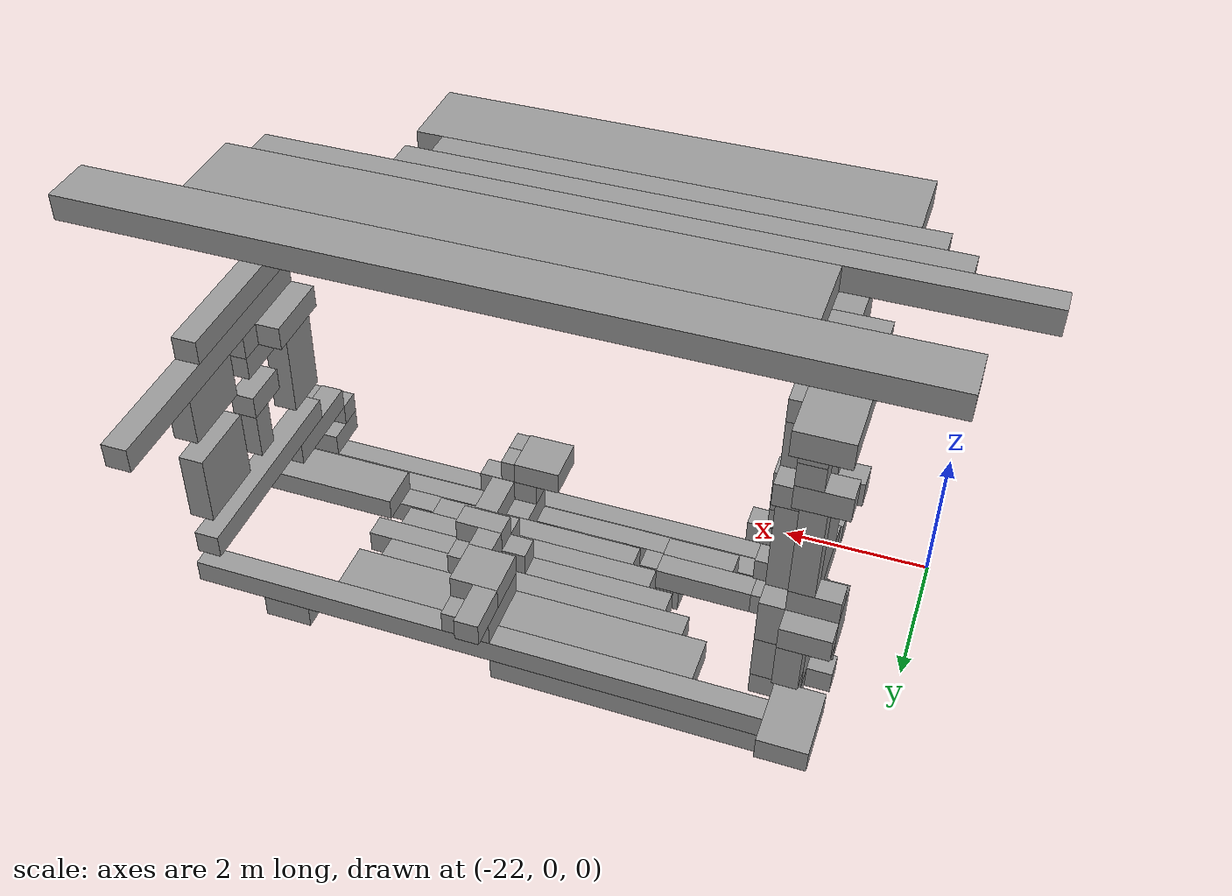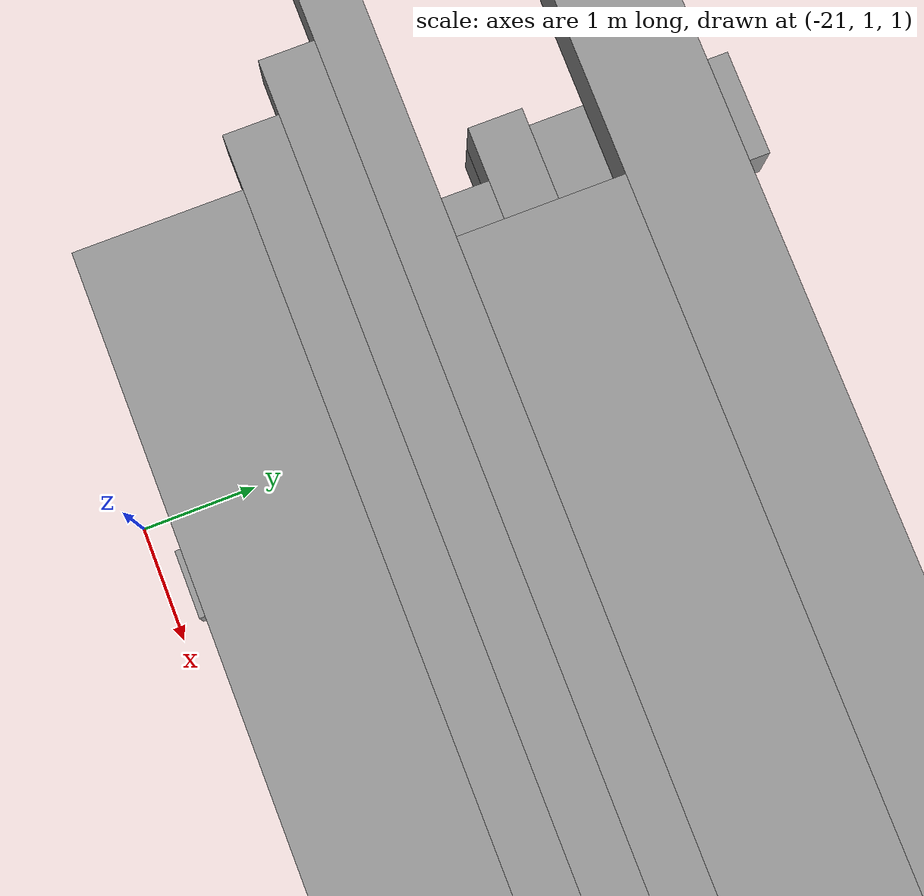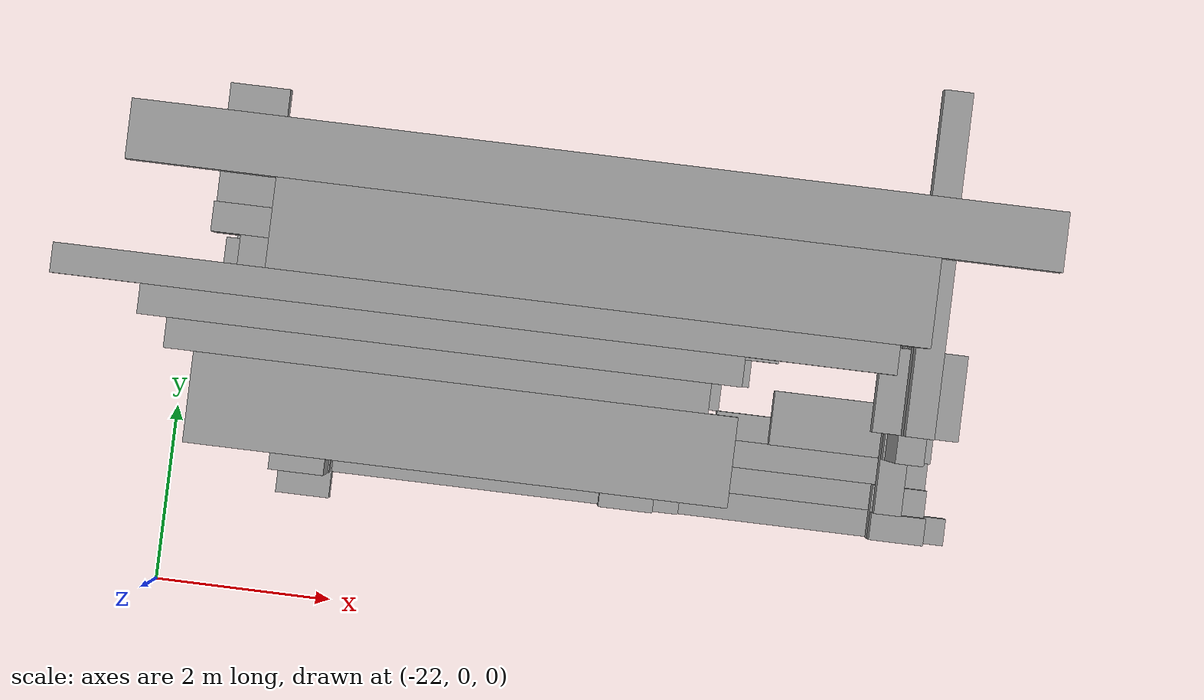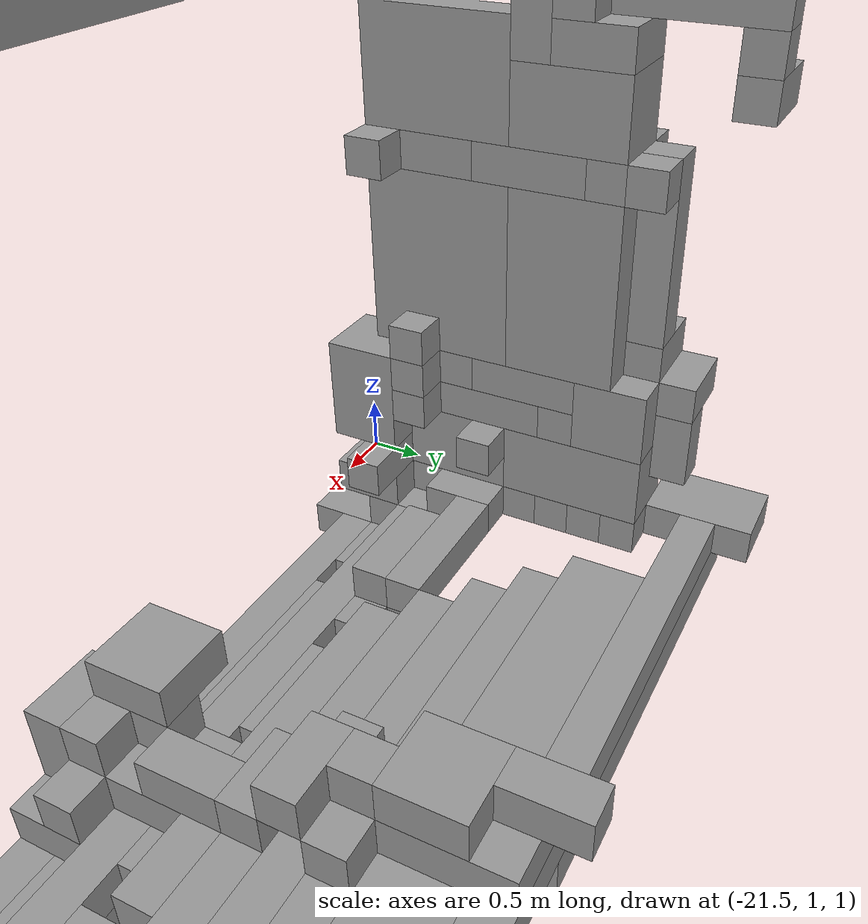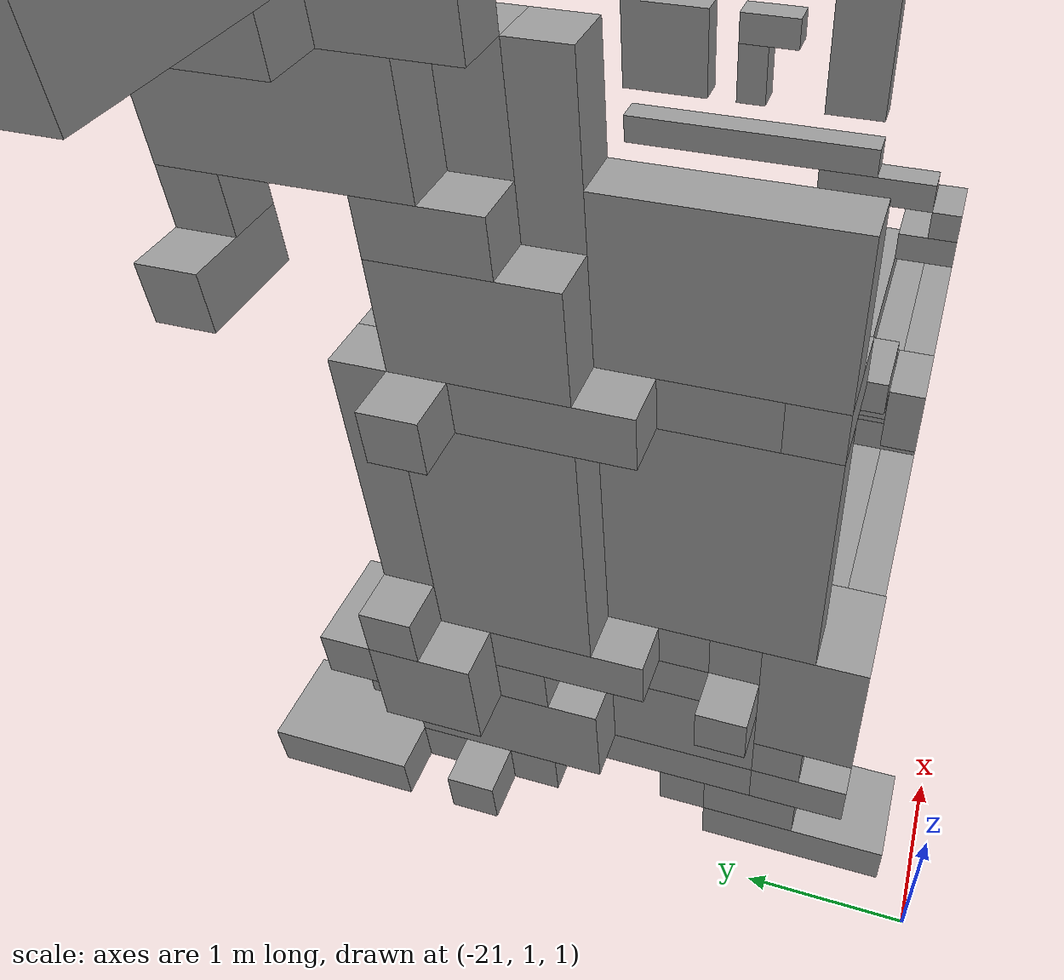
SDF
<sdf version="1.6">
 <world name="bt_world">
  <include><uri>model://sun</uri></include>
  <model name="obstacle_534">
   <static>true</static>
   <pose>-18.599999999999998 3.4499999999999997 7.05 0 0 0</pose>
   <link name="link">
    <collision name="collision"><geometry><box><size>8.4 0.3 0.3</size></box></geometry></collision>
    <visual name="visual">
     <geometry><box><size>8.4 0.3 0.3</size></box></geometry>
     <material><ambient>0.5 0.5 0.5 1</ambient><diffuse>0.6 0.6 0.6 1</diffuse></material>
    </visual>
   </link>
  </model>
  <model name="obstacle_617">
   <static>true</static>
   <pose>-17.55 4.8 7.05 0 0 0</pose>
   <link name="link">
    <collision name="collision"><geometry><box><size>9.299999999999999 0.6 0.3</size></box></geometry></collision>
    <visual name="visual">
     <geometry><box><size>9.299999999999999 0.6 0.3</size></box></geometry>
     <material><ambient>0.5 0.5 0.5 1</ambient><diffuse>0.6 0.6 0.6 1</diffuse></material>
    </visual>
   </link>
  </model>
  <model name="obstacle_668">
   <static>true</static>
   <pose>-18.9 3.15 7.05 0 0 0</pose>
   <link name="link">
    <collision name="collision"><geometry><box><size>6.0 0.3 0.3</size></box></geometry></collision>
    <visual name="visual">
     <geometry><box><size>6.0 0.3 0.3</size></box></geometry>
     <material><ambient>0.5 0.5 0.5 1</ambient><diffuse>0.6 0.6 0.6 1</diffuse></material>
    </visual>
   </link>
  </model>
  <model name="obstacle_710">
   <static>true</static>
   <pose>-18.9 2.85 7.05 0 0 0</pose>
   <link name="link">
    <collision name="collision">
     <geometry><box><size>5.3999999999999995 0.3 0.3</size></box></geometry>
    </collision>
    <visual name="visual">
     <geometry><box><size>5.3999999999999995 0.3 0.3</size></box></geometry>
     <material><ambient>0.5 0.5 0.5 1</ambient><diffuse>0.6 0.6 0.6 1</diffuse></material>
    </visual>
   </link>
  </model>
  <model name="obstacle_752">
   <static>true</static>
   <pose>-18.599999999999998 2.25 7.05 0 0 0</pose>
   <link name="link">
    <collision name="collision">
     <geometry><box><size>5.3999999999999995 0.8999999999999999 0.3</size></box></geometry>
    </collision>
    <visual name="visual">
     <geometry><box><size>5.3999999999999995 0.8999999999999999 0.3</size></box></geometry>
     <material><ambient>0.5 0.5 0.5 1</ambient><diffuse>0.6 0.6 0.6 1</diffuse></material>
    </visual>
   </link>
  </model>
  <model name="obstacle_753">
   <static>true</static>
   <pose>-20.849999999999998 3.75 1.65 0 0 0</pose>
   <link name="link">
    <collision name="collision">
     <geometry><box><size>0.8999999999999999 0.3 0.3</size></box></geometry>
    </collision>
    <visual name="visual">
     <geometry><box><size>0.8999999999999999 0.3 0.3</size></box></geometry>
     <material><ambient>0.5 0.5 0.5 1</ambient><diffuse>0.6 0.6 0.6 1</diffuse></material>
    </visual>
   </link>
  </model>
  <model name="obstacle_754">
   <static>true</static>
   <pose>-20.849999999999998 3.9 2.6999999999999997 0 0 0</pose>
   <link name="link">
    <collision name="collision">
     <geometry><box><size>0.8999999999999999 0.6 0.6</size></box></geometry>
    </collision>
    <visual name="visual">
     <geometry><box><size>0.8999999999999999 0.6 0.6</size></box></geometry>
     <material><ambient>0.5 0.5 0.5 1</ambient><diffuse>0.6 0.6 0.6 1</diffuse></material>
    </visual>
   </link>
  </model>
  <model name="obstacle_755">
   <static>true</static>
   <pose>-20.849999999999998 3.75 4.6499999999999995 0 0 0</pose>
   <link name="link">
    <collision name="collision">
     <geometry><box><size>0.8999999999999999 0.3 0.3</size></box></geometry>
    </collision>
    <visual name="visual">
     <geometry><box><size>0.8999999999999999 0.3 0.3</size></box></geometry>
     <material><ambient>0.5 0.5 0.5 1</ambient><diffuse>0.6 0.6 0.6 1</diffuse></material>
    </visual>
   </link>
  </model>
  <model name="obstacle_756">
   <static>true</static>
   <pose>-21.0 4.05 3.15 0 0 0</pose>
   <link name="link">
    <collision name="collision"><geometry><box><size>0.6 0.3 0.3</size></box></geometry></collision>
    <visual name="visual">
     <geometry><box><size>0.6 0.3 0.3</size></box></geometry>
     <material><ambient>0.5 0.5 0.5 1</ambient><diffuse>0.6 0.6 0.6 1</diffuse></material>
    </visual>
   </link>
  </model>
  <model name="obstacle_757">
   <static>true</static>
   <pose>-21.0 4.6499999999999995 6.45 0 0 0</pose>
   <link name="link">
    <collision name="collision"><geometry><box><size>0.6 1.5 0.3</size></box></geometry></collision>
    <visual name="visual">
     <geometry><box><size>0.6 1.5 0.3</size></box></geometry>
     <material><ambient>0.5 0.5 0.5 1</ambient><diffuse>0.6 0.6 0.6 1</diffuse></material>
    </visual>
   </link>
  </model>
  <model name="obstacle_758">
   <static>true</static>
   <pose>-21.0 4.05 6.75 0 0 0</pose>
   <link name="link">
    <collision name="collision"><geometry><box><size>0.6 0.3 0.3</size></box></geometry></collision>
    <visual name="visual">
     <geometry><box><size>0.6 0.3 0.3</size></box></geometry>
     <material><ambient>0.5 0.5 0.5 1</ambient><diffuse>0.6 0.6 0.6 1</diffuse></material>
    </visual>
   </link>
  </model>
  <model name="obstacle_759">
   <static>true</static>
   <pose>-21.0 4.6499999999999995 1.65 0 0 0</pose>
   <link name="link">
    <collision name="collision">
     <geometry><box><size>0.6 0.8999999999999999 0.3</size></box></geometry>
    </collision>
    <visual name="visual">
     <geometry><box><size>0.6 0.8999999999999999 0.3</size></box></geometry>
     <material><ambient>0.5 0.5 0.5 1</ambient><diffuse>0.6 0.6 0.6 1</diffuse></material>
    </visual>
   </link>
  </model>
  <model name="obstacle_761">
   <static>true</static>
   <pose>-21.0 4.35 2.85 0 0 0</pose>
   <link name="link">
    <collision name="collision"><geometry><box><size>0.6 0.3 0.3</size></box></geometry></collision>
    <visual name="visual">
     <geometry><box><size>0.6 0.3 0.3</size></box></geometry>
     <material><ambient>0.5 0.5 0.5 1</ambient><diffuse>0.6 0.6 0.6 1</diffuse></material>
    </visual>
   </link>
  </model>
  <model name="obstacle_769">
   <static>true</static>
   <pose>-21.0 4.6499999999999995 5.25 0 0 0</pose>
   <link name="link">
    <collision name="collision"><geometry><box><size>0.6 0.3 0.3</size></box></geometry></collision>
    <visual name="visual">
     <geometry><box><size>0.6 0.3 0.3</size></box></geometry>
     <material><ambient>0.5 0.5 0.5 1</ambient><diffuse>0.6 0.6 0.6 1</diffuse></material>
    </visual>
   </link>
  </model>
  <model name="obstacle_814">
   <static>true</static>
   <pose>-20.55 2.25 2.55 0 0 0</pose>
   <link name="link">
    <collision name="collision">
     <geometry><box><size>0.8999999999999999 0.3 0.3</size></box></geometry>
    </collision>
    <visual name="visual">
     <geometry><box><size>0.8999999999999999 0.3 0.3</size></box></geometry>
     <material><ambient>0.5 0.5 0.5 1</ambient><diffuse>0.6 0.6 0.6 1</diffuse></material>
    </visual>
   </link>
  </model>
  <model name="obstacle_815">
   <static>true</static>
   <pose>-20.7 3.15 2.85 0 0 0</pose>
   <link name="link">
    <collision name="collision">
     <geometry><box><size>0.6 0.8999999999999999 0.3</size></box></geometry>
    </collision>
    <visual name="visual">
     <geometry><box><size>0.6 0.8999999999999999 0.3</size></box></geometry>
     <material><ambient>0.5 0.5 0.5 1</ambient><diffuse>0.6 0.6 0.6 1</diffuse></material>
    </visual>
   </link>
  </model>
  <model name="obstacle_816">
   <static>true</static>
   <pose>-20.7 3.15 4.6499999999999995 0 0 0</pose>
   <link name="link">
    <collision name="collision">
     <geometry><box><size>0.6 0.8999999999999999 0.3</size></box></geometry>
    </collision>
    <visual name="visual">
     <geometry><box><size>0.6 0.8999999999999999 0.3</size></box></geometry>
     <material><ambient>0.5 0.5 0.5 1</ambient><diffuse>0.6 0.6 0.6 1</diffuse></material>
    </visual>
   </link>
  </model>
  <model name="obstacle_817">
   <static>true</static>
   <pose>-20.7 3.5999999999999996 2.1 0 0 0</pose>
   <link name="link">
    <collision name="collision"><geometry><box><size>0.6 1.2 0.6</size></box></geometry></collision>
    <visual name="visual">
     <geometry><box><size>0.6 1.2 0.6</size></box></geometry>
     <material><ambient>0.5 0.5 0.5 1</ambient><diffuse>0.6 0.6 0.6 1</diffuse></material>
    </visual>
   </link>
  </model>
  <model name="obstacle_818">
   <static>true</static>
   <pose>-20.7 3.4499999999999997 3.75 0 0 0</pose>
   <link name="link">
    <collision name="collision">
     <geometry><box><size>0.6 0.8999999999999999 1.5</size></box></geometry>
    </collision>
    <visual name="visual">
     <geometry><box><size>0.6 0.8999999999999999 1.5</size></box></geometry>
     <material><ambient>0.5 0.5 0.5 1</ambient><diffuse>0.6 0.6 0.6 1</diffuse></material>
    </visual>
   </link>
  </model>
  <model name="obstacle_819">
   <static>true</static>
   <pose>-20.7 3.4499999999999997 5.1 0 0 0</pose>
   <link name="link">
    <collision name="collision">
     <geometry><box><size>0.6 0.8999999999999999 0.6</size></box></geometry>
    </collision>
    <visual name="visual">
     <geometry><box><size>0.6 0.8999999999999999 0.6</size></box></geometry>
     <material><ambient>0.5 0.5 0.5 1</ambient><diffuse>0.6 0.6 0.6 1</diffuse></material>
    </visual>
   </link>
  </model>
  <model name="obstacle_820">
   <static>true</static>
   <pose>-20.7 3.4499999999999997 1.65 0 0 0</pose>
   <link name="link">
    <collision name="collision"><geometry><box><size>0.6 0.3 0.3</size></box></geometry></collision>
    <visual name="visual">
     <geometry><box><size>0.6 0.3 0.3</size></box></geometry>
     <material><ambient>0.5 0.5 0.5 1</ambient><diffuse>0.6 0.6 0.6 1</diffuse></material>
    </visual>
   </link>
  </model>
  <model name="obstacle_821">
   <static>true</static>
   <pose>-20.7 3.4499999999999997 2.55 0 0 0</pose>
   <link name="link">
    <collision name="collision"><geometry><box><size>0.6 0.3 0.3</size></box></geometry></collision>
    <visual name="visual">
     <geometry><box><size>0.6 0.3 0.3</size></box></geometry>
     <material><ambient>0.5 0.5 0.5 1</ambient><diffuse>0.6 0.6 0.6 1</diffuse></material>
    </visual>
   </link>
  </model>
  <model name="obstacle_822">
   <static>true</static>
   <pose>-20.7 3.5999999999999996 5.55 0 0 0</pose>
   <link name="link">
    <collision name="collision"><geometry><box><size>0.6 0.6 0.3</size></box></geometry></collision>
    <visual name="visual">
     <geometry><box><size>0.6 0.6 0.3</size></box></geometry>
     <material><ambient>0.5 0.5 0.5 1</ambient><diffuse>0.6 0.6 0.6 1</diffuse></material>
    </visual>
   </link>
  </model>
  <model name="obstacle_823">
   <static>true</static>
   <pose>-20.849999999999998 3.5999999999999996 6.6 0 0 0</pose>
   <link name="link">
    <collision name="collision"><geometry><box><size>0.3 0.6 0.6</size></box></geometry></collision>
    <visual name="visual">
     <geometry><box><size>0.3 0.6 0.6</size></box></geometry>
     <material><ambient>0.5 0.5 0.5 1</ambient><diffuse>0.6 0.6 0.6 1</diffuse></material>
    </visual>
   </link>
  </model>
  <model name="obstacle_824">
   <static>true</static>
   <pose>-20.849999999999998 4.2 6.0 0 0 0</pose>
   <link name="link">
    <collision name="collision"><geometry><box><size>0.3 1.2 0.6</size></box></geometry></collision>
    <visual name="visual">
     <geometry><box><size>0.3 1.2 0.6</size></box></geometry>
     <material><ambient>0.5 0.5 0.5 1</ambient><diffuse>0.6 0.6 0.6 1</diffuse></material>
    </visual>
   </link>
  </model>
  <model name="obstacle_825">
   <static>true</static>
   <pose>-20.7 4.05 1.65 0 0 0</pose>
   <link name="link">
    <collision name="collision"><geometry><box><size>0.6 0.3 0.3</size></box></geometry></collision>
    <visual name="visual">
     <geometry><box><size>0.6 0.3 0.3</size></box></geometry>
     <material><ambient>0.5 0.5 0.5 1</ambient><diffuse>0.6 0.6 0.6 1</diffuse></material>
    </visual>
   </link>
  </model>
  <model name="obstacle_826">
   <static>true</static>
   <pose>-20.849999999999998 4.05 4.05 0 0 0</pose>
   <link name="link">
    <collision name="collision"><geometry><box><size>0.3 0.3 1.5</size></box></geometry></collision>
    <visual name="visual">
     <geometry><box><size>0.3 0.3 1.5</size></box></geometry>
     <material><ambient>0.5 0.5 0.5 1</ambient><diffuse>0.6 0.6 0.6 1</diffuse></material>
    </visual>
   </link>
  </model>
  <model name="obstacle_827">
   <static>true</static>
   <pose>-20.849999999999998 4.35 2.4 0 0 0</pose>
   <link name="link">
    <collision name="collision"><geometry><box><size>0.3 0.3 0.6</size></box></geometry></collision>
    <visual name="visual">
     <geometry><box><size>0.3 0.3 0.6</size></box></geometry>
     <material><ambient>0.5 0.5 0.5 1</ambient><diffuse>0.6 0.6 0.6 1</diffuse></material>
    </visual>
   </link>
  </model>
  <model name="obstacle_828">
   <static>true</static>
   <pose>-19.2 4.6499999999999995 1.3499999999999999 0 0 0</pose>
   <link name="link">
    <collision name="collision">
     <geometry><box><size>3.5999999999999996 0.3 0.3</size></box></geometry>
    </collision>
    <visual name="visual">
     <geometry><box><size>3.5999999999999996 0.3 0.3</size></box></geometry>
     <material><ambient>0.5 0.5 0.5 1</ambient><diffuse>0.6 0.6 0.6 1</diffuse></material>
    </visual>
   </link>
  </model>
  <model name="obstacle_829">
   <static>true</static>
   <pose>-20.849999999999998 4.6499999999999995 5.55 0 0 0</pose>
   <link name="link">
    <collision name="collision"><geometry><box><size>0.3 0.3 0.3</size></box></geometry></collision>
    <visual name="visual">
     <geometry><box><size>0.3 0.3 0.3</size></box></geometry>
     <material><ambient>0.5 0.5 0.5 1</ambient><diffuse>0.6 0.6 0.6 1</diffuse></material>
    </visual>
   </link>
  </model>
  <model name="obstacle_860">
   <static>true</static>
   <pose>-20.4 1.7999999999999998 1.05 0 0 0</pose>
   <link name="link">
    <collision name="collision"><geometry><box><size>0.6 1.2 0.3</size></box></geometry></collision>
    <visual name="visual">
     <geometry><box><size>0.6 1.2 0.3</size></box></geometry>
     <material><ambient>0.5 0.5 0.5 1</ambient><diffuse>0.6 0.6 0.6 1</diffuse></material>
    </visual>
   </link>
  </model>
  <model name="obstacle_863">
   <static>true</static>
   <pose>-20.4 1.7999999999999998 1.65 0 0 0</pose>
   <link name="link">
    <collision name="collision"><geometry><box><size>0.6 0.6 0.3</size></box></geometry></collision>
    <visual name="visual">
     <geometry><box><size>0.6 0.6 0.3</size></box></geometry>
     <material><ambient>0.5 0.5 0.5 1</ambient><diffuse>0.6 0.6 0.6 1</diffuse></material>
    </visual>
   </link>
  </model>
  <model name="obstacle_864">
   <static>true</static>
   <pose>-20.4 1.7999999999999998 2.55 0 0 0</pose>
   <link name="link">
    <collision name="collision">
     <geometry><box><size>0.6 0.6 0.8999999999999999</size></box></geometry>
    </collision>
    <visual name="visual">
     <geometry><box><size>0.6 0.6 0.8999999999999999</size></box></geometry>
     <material><ambient>0.5 0.5 0.5 1</ambient><diffuse>0.6 0.6 0.6 1</diffuse></material>
    </visual>
   </link>
  </model>
  <model name="obstacle_866">
   <static>true</static>
   <pose>-20.4 2.1 1.3499999999999999 0 0 0</pose>
   <link name="link">
    <collision name="collision"><geometry><box><size>0.6 0.6 0.3</size></box></geometry></collision>
    <visual name="visual">
     <geometry><box><size>0.6 0.6 0.3</size></box></geometry>
     <material><ambient>0.5 0.5 0.5 1</ambient><diffuse>0.6 0.6 0.6 1</diffuse></material>
    </visual>
   </link>
  </model>
  <model name="obstacle_867">
   <static>true</static>
   <pose>-20.25 1.95 1.95 0 0 0</pose>
   <link name="link">
    <collision name="collision">
     <geometry><box><size>0.8999999999999999 0.3 0.3</size></box></geometry>
    </collision>
    <visual name="visual">
     <geometry><box><size>0.8999999999999999 0.3 0.3</size></box></geometry>
     <material><ambient>0.5 0.5 0.5 1</ambient><diffuse>0.6 0.6 0.6 1</diffuse></material>
    </visual>
   </link>
  </model>
  <model name="obstacle_868">
   <static>true</static>
   <pose>-20.55 2.4 3.75 0 0 0</pose>
   <link name="link">
    <collision name="collision"><geometry><box><size>0.3 1.2 1.5</size></box></geometry></collision>
    <visual name="visual">
     <geometry><box><size>0.3 1.2 1.5</size></box></geometry>
     <material><ambient>0.5 0.5 0.5 1</ambient><diffuse>0.6 0.6 0.6 1</diffuse></material>
    </visual>
   </link>
  </model>
  <model name="obstacle_869">
   <static>true</static>
   <pose>-20.4 1.95 4.6499999999999995 0 0 0</pose>
   <link name="link">
    <collision name="collision"><geometry><box><size>0.6 0.3 0.3</size></box></geometry></collision>
    <visual name="visual">
     <geometry><box><size>0.6 0.3 0.3</size></box></geometry>
     <material><ambient>0.5 0.5 0.5 1</ambient><diffuse>0.6 0.6 0.6 1</diffuse></material>
    </visual>
   </link>
  </model>
  <model name="obstacle_870">
   <static>true</static>
   <pose>-20.55 2.4 5.25 0 0 0</pose>
   <link name="link">
    <collision name="collision">
     <geometry><box><size>0.3 1.2 0.8999999999999999</size></box></geometry>
    </collision>
    <visual name="visual">
     <geometry><box><size>0.3 1.2 0.8999999999999999</size></box></geometry>
     <material><ambient>0.5 0.5 0.5 1</ambient><diffuse>0.6 0.6 0.6 1</diffuse></material>
    </visual>
   </link>
  </model>
  <model name="obstacle_871">
   <static>true</static>
   <pose>-20.55 2.6999999999999997 1.65 0 0 0</pose>
   <link name="link">
    <collision name="collision"><geometry><box><size>0.3 1.2 0.3</size></box></geometry></collision>
    <visual name="visual">
     <geometry><box><size>0.3 1.2 0.3</size></box></geometry>
     <material><ambient>0.5 0.5 0.5 1</ambient><diffuse>0.6 0.6 0.6 1</diffuse></material>
    </visual>
   </link>
  </model>
  <model name="obstacle_872">
   <static>true</static>
   <pose>-20.55 2.55 2.1 0 0 0</pose>
   <link name="link">
    <collision name="collision">
     <geometry><box><size>0.3 0.8999999999999999 0.6</size></box></geometry>
    </collision>
    <visual name="visual">
     <geometry><box><size>0.3 0.8999999999999999 0.6</size></box></geometry>
     <material><ambient>0.5 0.5 0.5 1</ambient><diffuse>0.6 0.6 0.6 1</diffuse></material>
    </visual>
   </link>
  </model>
  <model name="obstacle_873">
   <static>true</static>
   <pose>-20.4 2.25 2.85 0 0 0</pose>
   <link name="link">
    <collision name="collision"><geometry><box><size>0.6 0.3 0.3</size></box></geometry></collision>
    <visual name="visual">
     <geometry><box><size>0.6 0.3 0.3</size></box></geometry>
     <material><ambient>0.5 0.5 0.5 1</ambient><diffuse>0.6 0.6 0.6 1</diffuse></material>
    </visual>
   </link>
  </model>
  <model name="obstacle_874">
   <static>true</static>
   <pose>-20.55 2.4 4.6499999999999995 0 0 0</pose>
   <link name="link">
    <collision name="collision"><geometry><box><size>0.3 0.6 0.3</size></box></geometry></collision>
    <visual name="visual">
     <geometry><box><size>0.3 0.6 0.3</size></box></geometry>
     <material><ambient>0.5 0.5 0.5 1</ambient><diffuse>0.6 0.6 0.6 1</diffuse></material>
    </visual>
   </link>
  </model>
  <model name="obstacle_875">
   <static>true</static>
   <pose>-20.55 2.55 1.3499999999999999 0 0 0</pose>
   <link name="link">
    <collision name="collision"><geometry><box><size>0.3 0.3 0.3</size></box></geometry></collision>
    <visual name="visual">
     <geometry><box><size>0.3 0.3 0.3</size></box></geometry>
     <material><ambient>0.5 0.5 0.5 1</ambient><diffuse>0.6 0.6 0.6 1</diffuse></material>
    </visual>
   </link>
  </model>
  <model name="obstacle_876">
   <static>true</static>
   <pose>-20.55 2.85 2.55 0 0 0</pose>
   <link name="link">
    <collision name="collision">
     <geometry><box><size>0.3 0.8999999999999999 0.3</size></box></geometry>
    </collision>
    <visual name="visual">
     <geometry><box><size>0.3 0.8999999999999999 0.3</size></box></geometry>
     <material><ambient>0.5 0.5 0.5 1</ambient><diffuse>0.6 0.6 0.6 1</diffuse></material>
    </visual>
   </link>
  </model>
  <model name="obstacle_877">
   <static>true</static>
   <pose>-20.55 2.55 2.85 0 0 0</pose>
   <link name="link">
    <collision name="collision"><geometry><box><size>0.3 0.3 0.3</size></box></geometry></collision>
    <visual name="visual">
     <geometry><box><size>0.3 0.3 0.3</size></box></geometry>
     <material><ambient>0.5 0.5 0.5 1</ambient><diffuse>0.6 0.6 0.6 1</diffuse></material>
    </visual>
   </link>
  </model>
  <model name="obstacle_878">
   <static>true</static>
   <pose>-20.55 3.15 5.85 0 0 0</pose>
   <link name="link">
    <collision name="collision">
     <geometry><box><size>0.3 0.3 0.8999999999999999</size></box></geometry>
    </collision>
    <visual name="visual">
     <geometry><box><size>0.3 0.3 0.8999999999999999</size></box></geometry>
     <material><ambient>0.5 0.5 0.5 1</ambient><diffuse>0.6 0.6 0.6 1</diffuse></material>
    </visual>
   </link>
  </model>
  <model name="obstacle_879">
   <static>true</static>
   <pose>-20.55 3.4499999999999997 6.0 0 0 0</pose>
   <link name="link">
    <collision name="collision"><geometry><box><size>0.3 0.3 0.6</size></box></geometry></collision>
    <visual name="visual">
     <geometry><box><size>0.3 0.3 0.6</size></box></geometry>
     <material><ambient>0.5 0.5 0.5 1</ambient><diffuse>0.6 0.6 0.6 1</diffuse></material>
    </visual>
   </link>
  </model>
  <model name="obstacle_880">
   <static>true</static>
   <pose>-20.55 3.4499999999999997 6.75 0 0 0</pose>
   <link name="link">
    <collision name="collision"><geometry><box><size>0.3 0.3 0.3</size></box></geometry></collision>
    <visual name="visual">
     <geometry><box><size>0.3 0.3 0.3</size></box></geometry>
     <material><ambient>0.5 0.5 0.5 1</ambient><diffuse>0.6 0.6 0.6 1</diffuse></material>
    </visual>
   </link>
  </model>
  <model name="obstacle_881">
   <static>true</static>
   <pose>-17.4 4.05 7.05 0 0 0</pose>
   <link name="link">
    <collision name="collision">
     <geometry><box><size>6.6 0.8999999999999999 0.3</size></box></geometry>
    </collision>
    <visual name="visual">
     <geometry><box><size>6.6 0.8999999999999999 0.3</size></box></geometry>
     <material><ambient>0.5 0.5 0.5 1</ambient><diffuse>0.6 0.6 0.6 1</diffuse></material>
    </visual>
   </link>
  </model>
  <model name="obstacle_882">
   <static>true</static>
   <pose>-20.55 4.05 4.6499999999999995 0 0 0</pose>
   <link name="link">
    <collision name="collision"><geometry><box><size>0.3 0.3 0.3</size></box></geometry></collision>
    <visual name="visual">
     <geometry><box><size>0.3 0.3 0.3</size></box></geometry>
     <material><ambient>0.5 0.5 0.5 1</ambient><diffuse>0.6 0.6 0.6 1</diffuse></material>
    </visual>
   </link>
  </model>
  <model name="obstacle_883">
   <static>true</static>
   <pose>-17.099999999999998 4.6499999999999995 1.65 0 0 0</pose>
   <link name="link">
    <collision name="collision"><geometry><box><size>7.199999999999999 0.3 0.3</size></box></geometry></collision>
    <visual name="visual">
     <geometry><box><size>7.199999999999999 0.3 0.3</size></box></geometry>
     <material><ambient>0.5 0.5 0.5 1</ambient><diffuse>0.6 0.6 0.6 1</diffuse></material>
    </visual>
   </link>
  </model>
  <model name="obstacle_933">
   <static>true</static>
   <pose>-20.25 2.25 3.15 0 0 0</pose>
   <link name="link">
    <collision name="collision"><geometry><box><size>0.3 0.3 0.3</size></box></geometry></collision>
    <visual name="visual">
     <geometry><box><size>0.3 0.3 0.3</size></box></geometry>
     <material><ambient>0.5 0.5 0.5 1</ambient><diffuse>0.6 0.6 0.6 1</diffuse></material>
    </visual>
   </link>
  </model>
  <model name="obstacle_934">
   <static>true</static>
   <pose>-20.25 2.6999999999999997 1.65 0 0 0</pose>
   <link name="link">
    <collision name="collision"><geometry><box><size>0.3 0.6 0.3</size></box></geometry></collision>
    <visual name="visual">
     <geometry><box><size>0.3 0.6 0.3</size></box></geometry>
     <material><ambient>0.5 0.5 0.5 1</ambient><diffuse>0.6 0.6 0.6 1</diffuse></material>
    </visual>
   </link>
  </model>
  <model name="obstacle_935">
   <static>true</static>
   <pose>-20.25 2.85 2.25 0 0 0</pose>
   <link name="link">
    <collision name="collision"><geometry><box><size>0.3 0.3 0.3</size></box></geometry></collision>
    <visual name="visual">
     <geometry><box><size>0.3 0.3 0.3</size></box></geometry>
     <material><ambient>0.5 0.5 0.5 1</ambient><diffuse>0.6 0.6 0.6 1</diffuse></material>
    </visual>
   </link>
  </model>
  <model name="obstacle_958">
   <static>true</static>
   <pose>-16.65 1.65 1.05 0 0 0</pose>
   <link name="link">
    <collision name="collision">
     <geometry><box><size>6.8999999999999995 0.3 0.3</size></box></geometry>
    </collision>
    <visual name="visual">
     <geometry><box><size>6.8999999999999995 0.3 0.3</size></box></geometry>
     <material><ambient>0.5 0.5 0.5 1</ambient><diffuse>0.6 0.6 0.6 1</diffuse></material>
    </visual>
   </link>
  </model>
  <model name="obstacle_959">
   <static>true</static>
   <pose>-19.8 2.1 1.05 0 0 0</pose>
   <link name="link">
    <collision name="collision"><geometry><box><size>0.6 0.6 0.3</size></box></geometry></collision>
    <visual name="visual">
     <geometry><box><size>0.6 0.6 0.3</size></box></geometry>
     <material><ambient>0.5 0.5 0.5 1</ambient><diffuse>0.6 0.6 0.6 1</diffuse></material>
    </visual>
   </link>
  </model>
  <model name="obstacle_960">
   <static>true</static>
   <pose>-16.8 2.25 1.3499999999999999 0 0 0</pose>
   <link name="link">
    <collision name="collision"><geometry><box><size>6.6 0.3 0.3</size></box></geometry></collision>
    <visual name="visual">
     <geometry><box><size>6.6 0.3 0.3</size></box></geometry>
     <material><ambient>0.5 0.5 0.5 1</ambient><diffuse>0.6 0.6 0.6 1</diffuse></material>
    </visual>
   </link>
  </model>
  <model name="obstacle_961">
   <static>true</static>
   <pose>-19.5 2.85 1.65 0 0 0</pose>
   <link name="link">
    <collision name="collision"><geometry><box><size>1.2 0.3 0.3</size></box></geometry></collision>
    <visual name="visual">
     <geometry><box><size>1.2 0.3 0.3</size></box></geometry>
     <material><ambient>0.5 0.5 0.5 1</ambient><diffuse>0.6 0.6 0.6 1</diffuse></material>
    </visual>
   </link>
  </model>
  <model name="obstacle_981">
   <static>true</static>
   <pose>-19.2 2.55 1.3499999999999999 0 0 0</pose>
   <link name="link">
    <collision name="collision"><geometry><box><size>1.2 0.3 0.3</size></box></geometry></collision>
    <visual name="visual">
     <geometry><box><size>1.2 0.3 0.3</size></box></geometry>
     <material><ambient>0.5 0.5 0.5 1</ambient><diffuse>0.6 0.6 0.6 1</diffuse></material>
    </visual>
   </link>
  </model>
  <model name="obstacle_982">
   <static>true</static>
   <pose>-19.349999999999998 2.55 1.65 0 0 0</pose>
   <link name="link">
    <collision name="collision">
     <geometry><box><size>0.8999999999999999 0.3 0.3</size></box></geometry>
    </collision>
    <visual name="visual">
     <geometry><box><size>0.8999999999999999 0.3 0.3</size></box></geometry>
     <material><ambient>0.5 0.5 0.5 1</ambient><diffuse>0.6 0.6 0.6 1</diffuse></material>
    </visual>
   </link>
  </model>
  <model name="obstacle_983">
   <static>true</static>
   <pose>-17.55 4.2 1.65 0 0 0</pose>
   <link name="link">
    <collision name="collision"><geometry><box><size>4.5 0.6 0.3</size></box></geometry></collision>
    <visual name="visual">
     <geometry><box><size>4.5 0.6 0.3</size></box></geometry>
     <material><ambient>0.5 0.5 0.5 1</ambient><diffuse>0.6 0.6 0.6 1</diffuse></material>
    </visual>
   </link>
  </model>
  <model name="obstacle_1000">
   <static>true</static>
   <pose>-16.5 2.25 1.05 0 0 0</pose>
   <link name="link">
    <collision name="collision"><geometry><box><size>6.0 0.3 0.3</size></box></geometry></collision>
    <visual name="visual">
     <geometry><box><size>6.0 0.3 0.3</size></box></geometry>
     <material><ambient>0.5 0.5 0.5 1</ambient><diffuse>0.6 0.6 0.6 1</diffuse></material>
    </visual>
   </link>
  </model>
  <model name="obstacle_1001">
   <static>true</static>
   <pose>-17.55 3.75 1.65 0 0 0</pose>
   <link name="link">
    <collision name="collision"><geometry><box><size>3.9 0.3 0.3</size></box></geometry></collision>
    <visual name="visual">
     <geometry><box><size>3.9 0.3 0.3</size></box></geometry>
     <material><ambient>0.5 0.5 0.5 1</ambient><diffuse>0.6 0.6 0.6 1</diffuse></material>
    </visual>
   </link>
  </model>
  <model name="obstacle_1015">
   <static>true</static>
   <pose>-16.349999999999998 1.95 1.05 0 0 0</pose>
   <link name="link">
    <collision name="collision"><geometry><box><size>5.7 0.3 0.3</size></box></geometry></collision>
    <visual name="visual">
     <geometry><box><size>5.7 0.3 0.3</size></box></geometry>
     <material><ambient>0.5 0.5 0.5 1</ambient><diffuse>0.6 0.6 0.6 1</diffuse></material>
    </visual>
   </link>
  </model>
  <model name="obstacle_1016">
   <static>true</static>
   <pose>-19.05 2.85 1.3499999999999999 0 0 0</pose>
   <link name="link">
    <collision name="collision"><geometry><box><size>0.3 0.3 0.3</size></box></geometry></collision>
    <visual name="visual">
     <geometry><box><size>0.3 0.3 0.3</size></box></geometry>
     <material><ambient>0.5 0.5 0.5 1</ambient><diffuse>0.6 0.6 0.6 1</diffuse></material>
    </visual>
   </link>
  </model>
  <model name="obstacle_1017">
   <static>true</static>
   <pose>-17.25 3.4499999999999997 1.65 0 0 0</pose>
   <link name="link">
    <collision name="collision"><geometry><box><size>3.9 0.3 0.3</size></box></geometry></collision>
    <visual name="visual">
     <geometry><box><size>3.9 0.3 0.3</size></box></geometry>
     <material><ambient>0.5 0.5 0.5 1</ambient><diffuse>0.6 0.6 0.6 1</diffuse></material>
    </visual>
   </link>
  </model>
  <model name="obstacle_1027">
   <static>true</static>
   <pose>-17.25 3.15 1.65 0 0 0</pose>
   <link name="link">
    <collision name="collision"><geometry><box><size>3.3 0.3 0.3</size></box></geometry></collision>
    <visual name="visual">
     <geometry><box><size>3.3 0.3 0.3</size></box></geometry>
     <material><ambient>0.5 0.5 0.5 1</ambient><diffuse>0.6 0.6 0.6 1</diffuse></material>
    </visual>
   </link>
  </model>
  <model name="obstacle_1036">
   <static>true</static>
   <pose>-17.25 2.85 1.65 0 0 0</pose>
   <link name="link">
    <collision name="collision">
     <geometry><box><size>2.6999999999999997 0.3 0.3</size></box></geometry>
    </collision>
    <visual name="visual">
     <geometry><box><size>2.6999999999999997 0.3 0.3</size></box></geometry>
     <material><ambient>0.5 0.5 0.5 1</ambient><diffuse>0.6 0.6 0.6 1</diffuse></material>
    </visual>
   </link>
  </model>
  <model name="obstacle_1059">
   <static>true</static>
   <pose>-17.849999999999998 2.55 1.3499999999999999 0 0 0</pose>
   <link name="link">
    <collision name="collision">
     <geometry><box><size>0.8999999999999999 0.3 0.3</size></box></geometry>
    </collision>
    <visual name="visual">
     <geometry><box><size>0.8999999999999999 0.3 0.3</size></box></geometry>
     <material><ambient>0.5 0.5 0.5 1</ambient><diffuse>0.6 0.6 0.6 1</diffuse></material>
    </visual>
   </link>
  </model>
  <model name="obstacle_1111">
   <static>true</static>
   <pose>-17.099999999999998 2.1 2.25 0 0 0</pose>
   <link name="link">
    <collision name="collision"><geometry><box><size>0.6 0.6 0.3</size></box></geometry></collision>
    <visual name="visual">
     <geometry><box><size>0.6 0.6 0.3</size></box></geometry>
     <material><ambient>0.5 0.5 0.5 1</ambient><diffuse>0.6 0.6 0.6 1</diffuse></material>
    </visual>
   </link>
  </model>
  <model name="obstacle_1112">
   <static>true</static>
   <pose>-17.25 3.4499999999999997 1.95 0 0 0</pose>
   <link name="link">
    <collision name="collision"><geometry><box><size>0.3 0.3 0.3</size></box></geometry></collision>
    <visual name="visual">
     <geometry><box><size>0.3 0.3 0.3</size></box></geometry>
     <material><ambient>0.5 0.5 0.5 1</ambient><diffuse>0.6 0.6 0.6 1</diffuse></material>
    </visual>
   </link>
  </model>
  <model name="obstacle_1113">
   <static>true</static>
   <pose>-17.099999999999998 4.35 1.95 0 0 0</pose>
   <link name="link">
    <collision name="collision">
     <geometry><box><size>0.6 0.8999999999999999 0.3</size></box></geometry>
    </collision>
    <visual name="visual">
     <geometry><box><size>0.6 0.8999999999999999 0.3</size></box></geometry>
     <material><ambient>0.5 0.5 0.5 1</ambient><diffuse>0.6 0.6 0.6 1</diffuse></material>
    </visual>
   </link>
  </model>
  <model name="obstacle_1114">
   <static>true</static>
   <pose>-17.099999999999998 4.2 2.25 0 0 0</pose>
   <link name="link">
    <collision name="collision"><geometry><box><size>0.6 0.6 0.3</size></box></geometry></collision>
    <visual name="visual">
     <geometry><box><size>0.6 0.6 0.3</size></box></geometry>
     <material><ambient>0.5 0.5 0.5 1</ambient><diffuse>0.6 0.6 0.6 1</diffuse></material>
    </visual>
   </link>
  </model>
  <model name="obstacle_1115">
   <static>true</static>
   <pose>-17.25 4.8 2.25 0 0 0</pose>
   <link name="link">
    <collision name="collision"><geometry><box><size>0.3 0.6 0.3</size></box></geometry></collision>
    <visual name="visual">
     <geometry><box><size>0.3 0.6 0.3</size></box></geometry>
     <material><ambient>0.5 0.5 0.5 1</ambient><diffuse>0.6 0.6 0.6 1</diffuse></material>
    </visual>
   </link>
  </model>
  <model name="obstacle_1158">
   <static>true</static>
   <pose>-16.8 1.65 1.7999999999999998 0 0 0</pose>
   <link name="link">
    <collision name="collision"><geometry><box><size>0.6 0.3 0.6</size></box></geometry></collision>
    <visual name="visual">
     <geometry><box><size>0.6 0.3 0.6</size></box></geometry>
     <material><ambient>0.5 0.5 0.5 1</ambient><diffuse>0.6 0.6 0.6 1</diffuse></material>
    </visual>
   </link>
  </model>
  <model name="obstacle_1159">
   <static>true</static>
   <pose>-16.8 1.95 1.95 0 0 0</pose>
   <link name="link">
    <collision name="collision"><geometry><box><size>0.6 0.3 0.3</size></box></geometry></collision>
    <visual name="visual">
     <geometry><box><size>0.6 0.3 0.3</size></box></geometry>
     <material><ambient>0.5 0.5 0.5 1</ambient><diffuse>0.6 0.6 0.6 1</diffuse></material>
    </visual>
   </link>
  </model>
  <model name="obstacle_1160">
   <static>true</static>
   <pose>-16.8 2.4 1.65 0 0 0</pose>
   <link name="link">
    <collision name="collision"><geometry><box><size>0.6 0.6 0.3</size></box></geometry></collision>
    <visual name="visual">
     <geometry><box><size>0.6 0.6 0.3</size></box></geometry>
     <material><ambient>0.5 0.5 0.5 1</ambient><diffuse>0.6 0.6 0.6 1</diffuse></material>
    </visual>
   </link>
  </model>
  <model name="obstacle_1161">
   <static>true</static>
   <pose>-16.95 2.25 1.95 0 0 0</pose>
   <link name="link">
    <collision name="collision"><geometry><box><size>0.3 0.3 0.3</size></box></geometry></collision>
    <visual name="visual">
     <geometry><box><size>0.3 0.3 0.3</size></box></geometry>
     <material><ambient>0.5 0.5 0.5 1</ambient><diffuse>0.6 0.6 0.6 1</diffuse></material>
    </visual>
   </link>
  </model>
  <model name="obstacle_1162">
   <static>true</static>
   <pose>-16.65 2.55 1.3499999999999999 0 0 0</pose>
   <link name="link">
    <collision name="collision">
     <geometry><box><size>0.8999999999999999 0.3 0.3</size></box></geometry>
    </collision>
    <visual name="visual">
     <geometry><box><size>0.8999999999999999 0.3 0.3</size></box></geometry>
     <material><ambient>0.5 0.5 0.5 1</ambient><diffuse>0.6 0.6 0.6 1</diffuse></material>
    </visual>
   </link>
  </model>
  <model name="obstacle_1163">
   <static>true</static>
   <pose>-16.8 3.15 1.95 0 0 0</pose>
   <link name="link">
    <collision name="collision"><geometry><box><size>0.6 0.3 0.3</size></box></geometry></collision>
    <visual name="visual">
     <geometry><box><size>0.6 0.3 0.3</size></box></geometry>
     <material><ambient>0.5 0.5 0.5 1</ambient><diffuse>0.6 0.6 0.6 1</diffuse></material>
    </visual>
   </link>
  </model>
  <model name="obstacle_1164">
   <static>true</static>
   <pose>-16.8 3.4499999999999997 2.25 0 0 0</pose>
   <link name="link">
    <collision name="collision"><geometry><box><size>0.6 0.3 0.3</size></box></geometry></collision>
    <visual name="visual">
     <geometry><box><size>0.6 0.3 0.3</size></box></geometry>
     <material><ambient>0.5 0.5 0.5 1</ambient><diffuse>0.6 0.6 0.6 1</diffuse></material>
    </visual>
   </link>
  </model>
  <model name="obstacle_1165">
   <static>true</static>
   <pose>-16.8 3.75 1.95 0 0 0</pose>
   <link name="link">
    <collision name="collision"><geometry><box><size>0.6 0.3 0.3</size></box></geometry></collision>
    <visual name="visual">
     <geometry><box><size>0.6 0.3 0.3</size></box></geometry>
     <material><ambient>0.5 0.5 0.5 1</ambient><diffuse>0.6 0.6 0.6 1</diffuse></material>
    </visual>
   </link>
  </model>
  <model name="obstacle_1166">
   <static>true</static>
   <pose>-16.95 3.75 2.25 0 0 0</pose>
   <link name="link">
    <collision name="collision"><geometry><box><size>0.3 0.3 0.3</size></box></geometry></collision>
    <visual name="visual">
     <geometry><box><size>0.3 0.3 0.3</size></box></geometry>
     <material><ambient>0.5 0.5 0.5 1</ambient><diffuse>0.6 0.6 0.6 1</diffuse></material>
    </visual>
   </link>
  </model>
  <model name="obstacle_1194">
   <static>true</static>
   <pose>-16.5 1.7999999999999998 1.3499999999999999 0 0 0</pose>
   <link name="link">
    <collision name="collision"><geometry><box><size>0.6 0.6 0.3</size></box></geometry></collision>
    <visual name="visual">
     <geometry><box><size>0.6 0.6 0.3</size></box></geometry>
     <material><ambient>0.5 0.5 0.5 1</ambient><diffuse>0.6 0.6 0.6 1</diffuse></material>
    </visual>
   </link>
  </model>
  <model name="obstacle_1195">
   <static>true</static>
   <pose>-16.5 1.95 1.65 0 0 0</pose>
   <link name="link">
    <collision name="collision"><geometry><box><size>0.6 0.3 0.3</size></box></geometry></collision>
    <visual name="visual">
     <geometry><box><size>0.6 0.3 0.3</size></box></geometry>
     <material><ambient>0.5 0.5 0.5 1</ambient><diffuse>0.6 0.6 0.6 1</diffuse></material>
    </visual>
   </link>
  </model>
  <model name="obstacle_1196">
   <static>true</static>
   <pose>-16.65 2.6999999999999997 1.95 0 0 0</pose>
   <link name="link">
    <collision name="collision"><geometry><box><size>0.3 0.6 0.3</size></box></geometry></collision>
    <visual name="visual">
     <geometry><box><size>0.3 0.6 0.3</size></box></geometry>
     <material><ambient>0.5 0.5 0.5 1</ambient><diffuse>0.6 0.6 0.6 1</diffuse></material>
    </visual>
   </link>
  </model>
  <model name="obstacle_1241">
   <static>true</static>
   <pose>-14.85 2.55 1.3499999999999999 0 0 0</pose>
   <link name="link">
    <collision name="collision"><geometry><box><size>2.1 0.3 0.3</size></box></geometry></collision>
    <visual name="visual">
     <geometry><box><size>2.1 0.3 0.3</size></box></geometry>
     <material><ambient>0.5 0.5 0.5 1</ambient><diffuse>0.6 0.6 0.6 1</diffuse></material>
    </visual>
   </link>
  </model>
  <model name="obstacle_1264">
   <static>true</static>
   <pose>-14.399999999999999 2.6999999999999997 1.65 0 0 0</pose>
   <link name="link">
    <collision name="collision">
     <geometry><box><size>1.7999999999999998 0.6 0.3</size></box></geometry>
    </collision>
    <visual name="visual">
     <geometry><box><size>1.7999999999999998 0.6 0.3</size></box></geometry>
     <material><ambient>0.5 0.5 0.5 1</ambient><diffuse>0.6 0.6 0.6 1</diffuse></material>
    </visual>
   </link>
  </model>
  <model name="obstacle_1273">
   <static>true</static>
   <pose>-14.7 4.6499999999999995 1.3499999999999999 0 0 0</pose>
   <link name="link">
    <collision name="collision"><geometry><box><size>0.6 0.3 0.3</size></box></geometry></collision>
    <visual name="visual">
     <geometry><box><size>0.6 0.3 0.3</size></box></geometry>
     <material><ambient>0.5 0.5 0.5 1</ambient><diffuse>0.6 0.6 0.6 1</diffuse></material>
    </visual>
   </link>
  </model>
  <model name="obstacle_1299">
   <static>true</static>
   <pose>-13.95 3.15 4.6499999999999995 0 0 0</pose>
   <link name="link">
    <collision name="collision">
     <geometry><box><size>0.8999999999999999 0.8999999999999999 0.3</size></box></geometry>
    </collision>
    <visual name="visual">
     <geometry><box><size>0.8999999999999999 0.8999999999999999 0.3</size></box></geometry>
     <material><ambient>0.5 0.5 0.5 1</ambient><diffuse>0.6 0.6 0.6 1</diffuse></material>
    </visual>
   </link>
  </model>
  <model name="obstacle_1326">
   <static>true</static>
   <pose>-13.799999999999999 1.7999999999999998 1.65 0 0 0</pose>
   <link name="link">
    <collision name="collision"><geometry><box><size>0.6 0.6 0.3</size></box></geometry></collision>
    <visual name="visual">
     <geometry><box><size>0.6 0.6 0.3</size></box></geometry>
     <material><ambient>0.5 0.5 0.5 1</ambient><diffuse>0.6 0.6 0.6 1</diffuse></material>
    </visual>
   </link>
  </model>
  <model name="obstacle_1327">
   <static>true</static>
   <pose>-13.799999999999999 1.65 1.95 0 0 0</pose>
   <link name="link">
    <collision name="collision"><geometry><box><size>0.6 0.3 0.3</size></box></geometry></collision>
    <visual name="visual">
     <geometry><box><size>0.6 0.3 0.3</size></box></geometry>
     <material><ambient>0.5 0.5 0.5 1</ambient><diffuse>0.6 0.6 0.6 1</diffuse></material>
    </visual>
   </link>
  </model>
  <model name="obstacle_1329">
   <static>true</static>
   <pose>-13.95 2.4 2.25 0 0 0</pose>
   <link name="link">
    <collision name="collision"><geometry><box><size>0.3 1.2 0.3</size></box></geometry></collision>
    <visual name="visual">
     <geometry><box><size>0.3 1.2 0.3</size></box></geometry>
     <material><ambient>0.5 0.5 0.5 1</ambient><diffuse>0.6 0.6 0.6 1</diffuse></material>
    </visual>
   </link>
  </model>
  <model name="obstacle_1332">
   <static>true</static>
   <pose>-13.95 3.75 2.55 0 0 0</pose>
   <link name="link">
    <collision name="collision">
     <geometry><box><size>0.3 2.6999999999999997 0.3</size></box></geometry>
    </collision>
    <visual name="visual">
     <geometry><box><size>0.3 2.6999999999999997 0.3</size></box></geometry>
     <material><ambient>0.5 0.5 0.5 1</ambient><diffuse>0.6 0.6 0.6 1</diffuse></material>
    </visual>
   </link>
  </model>
  <model name="obstacle_1333">
   <static>true</static>
   <pose>-13.95 2.6999999999999997 3.75 0 0 0</pose>
   <link name="link">
    <collision name="collision"><geometry><box><size>0.3 0.6 1.5</size></box></geometry></collision>
    <visual name="visual">
     <geometry><box><size>0.3 0.6 1.5</size></box></geometry>
     <material><ambient>0.5 0.5 0.5 1</ambient><diffuse>0.6 0.6 0.6 1</diffuse></material>
    </visual>
   </link>
  </model>
  <model name="obstacle_1335">
   <static>true</static>
   <pose>-13.95 4.5 4.95 0 0 0</pose>
   <link name="link">
    <collision name="collision">
     <geometry><box><size>0.3 3.5999999999999996 0.3</size></box></geometry>
    </collision>
    <visual name="visual">
     <geometry><box><size>0.3 3.5999999999999996 0.3</size></box></geometry>
     <material><ambient>0.5 0.5 0.5 1</ambient><diffuse>0.6 0.6 0.6 1</diffuse></material>
    </visual>
   </link>
  </model>
  <model name="obstacle_1336">
   <static>true</static>
   <pose>-13.95 3.75 5.25 0 0 0</pose>
   <link name="link">
    <collision name="collision"><geometry><box><size>0.3 2.1 0.3</size></box></geometry></collision>
    <visual name="visual">
     <geometry><box><size>0.3 2.1 0.3</size></box></geometry>
     <material><ambient>0.5 0.5 0.5 1</ambient><diffuse>0.6 0.6 0.6 1</diffuse></material>
    </visual>
   </link>
  </model>
  <model name="obstacle_1338">
   <static>true</static>
   <pose>-13.95 3.4499999999999997 4.35 0 0 0</pose>
   <link name="link">
    <collision name="collision">
     <geometry><box><size>0.3 0.8999999999999999 0.3</size></box></geometry>
    </collision>
    <visual name="visual">
     <geometry><box><size>0.3 0.8999999999999999 0.3</size></box></geometry>
     <material><ambient>0.5 0.5 0.5 1</ambient><diffuse>0.6 0.6 0.6 1</diffuse></material>
    </visual>
   </link>
  </model>
  <model name="obstacle_1339">
   <static>true</static>
   <pose>-13.95 3.5999999999999996 3.75 0 0 0</pose>
   <link name="link">
    <collision name="collision"><geometry><box><size>0.3 0.6 0.3</size></box></geometry></collision>
    <visual name="visual">
     <geometry><box><size>0.3 0.6 0.3</size></box></geometry>
     <material><ambient>0.5 0.5 0.5 1</ambient><diffuse>0.6 0.6 0.6 1</diffuse></material>
    </visual>
   </link>
  </model>
  <model name="obstacle_1340">
   <static>true</static>
   <pose>-13.95 3.75 3.3 0 0 0</pose>
   <link name="link">
    <collision name="collision"><geometry><box><size>0.3 0.3 0.6</size></box></geometry></collision>
    <visual name="visual">
     <geometry><box><size>0.3 0.3 0.6</size></box></geometry>
     <material><ambient>0.5 0.5 0.5 1</ambient><diffuse>0.6 0.6 0.6 1</diffuse></material>
    </visual>
   </link>
  </model>
  <model name="obstacle_1341">
   <static>true</static>
   <pose>-13.95 3.75 4.6499999999999995 0 0 0</pose>
   <link name="link">
    <collision name="collision"><geometry><box><size>0.3 0.3 0.3</size></box></geometry></collision>
    <visual name="visual">
     <geometry><box><size>0.3 0.3 0.3</size></box></geometry>
     <material><ambient>0.5 0.5 0.5 1</ambient><diffuse>0.6 0.6 0.6 1</diffuse></material>
    </visual>
   </link>
  </model>
  <model name="obstacle_1348">
   <static>true</static>
   <pose>-13.95 4.6499999999999995 3.4499999999999997 0 0 0</pose>
   <link name="link">
    <collision name="collision">
     <geometry><box><size>0.3 0.8999999999999999 0.8999999999999999</size></box></geometry>
    </collision>
    <visual name="visual">
     <geometry><box><size>0.3 0.8999999999999999 0.8999999999999999</size></box></geometry>
     <material><ambient>0.5 0.5 0.5 1</ambient><diffuse>0.6 0.6 0.6 1</diffuse></material>
    </visual>
   </link>
  </model>
  <model name="obstacle_1349">
   <static>true</static>
   <pose>-13.95 4.6499999999999995 4.5 0 0 0</pose>
   <link name="link">
    <collision name="collision">
     <geometry><box><size>0.3 0.8999999999999999 0.6</size></box></geometry>
    </collision>
    <visual name="visual">
     <geometry><box><size>0.3 0.8999999999999999 0.6</size></box></geometry>
     <material><ambient>0.5 0.5 0.5 1</ambient><diffuse>0.6 0.6 0.6 1</diffuse></material>
    </visual>
   </link>
  </model>
 </world>
</sdf>
